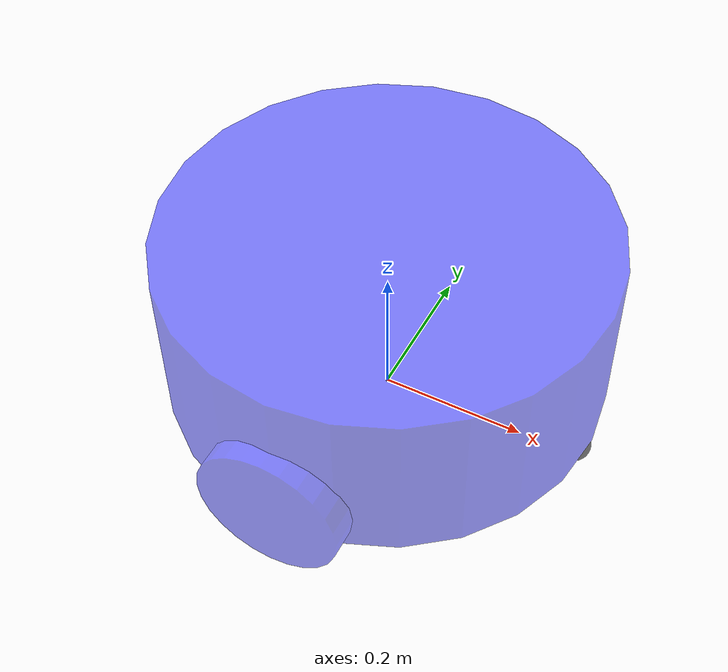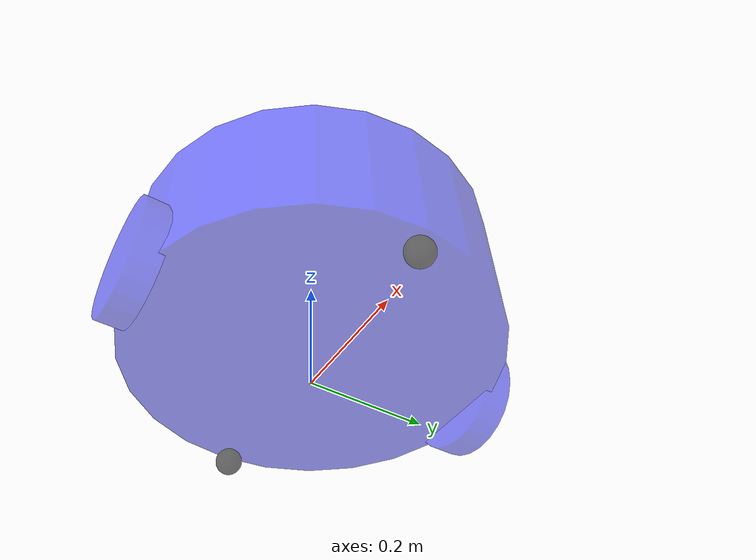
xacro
<robot name="mycar" xmlns:xacro="http://wiki.ros.org/xacro">
    <xacro:property name="footprint_radius" value="0.003"/>
    <xacro:property name="base_radius" value="0.3"/>
    <xacro:property name="base_length" value="0.24"/>
    <xacro:property name="lidi" value="0.045"/>
    <xacro:property name="base_joint_z" value="${base_length/2 + lidi}"/>

    <link name="base_footprint">
        <visual>
            <geometry>
                <sphere radius="${footprint_radius}" />
            </geometry>
        </visual>
    </link>

    <link name="base_link">
        <visual>
            <geometry>
                <cylinder radius="${base_radius}" length="${base_length}" />
            </geometry>
            <origin xyz="0 0 0" rpy="0 0 0" />
            <material name="blue">
                <color rgba="0 0 1.0 0.5" />
            </material>
        </visual>
        <collision>
            <geometry>
                <cylinder radius="${base_radius}" length="${base_length}" />
            </geometry>
            <origin xyz="0 0 0" rpy="0 0 0" />
        </collision>
        <xacro:cylinder_inertial_matrix m="18" r="${base_radius}" h="${base_length}" />
    </link>

    <gazebo reference="base_link">
        <material>Gazebo/Yellow</material>
    </gazebo>

    <joint name="base_link2base_footprint" type="fixed">
        <parent link="base_footprint" />
        <child link="base_link"/>
        <origin xyz="0 0 ${base_joint_z}" />
    </joint>

    <xacro:property name="wheel_radius" value="0.0975"/>
    <xacro:property name="wheel_length" value="0.045"/>
    <xacro:property name="PI" value="3.1415927"/>
    <xacro:property name="wheel_joint_Z" value="${-base_length/2 - lidi + wheel_radius}"/>

    <xacro:macro name="wheel_func" params="wheel_name flag">
        <link name="${wheel_name}_wheel">
            <visual>
                <geometry>
                    <cylinder radius="${wheel_radius}" length="${wheel_length}" />
                </geometry>
                <origin xyz="0 0 0" rpy="${PI/2} 0 0" />
                <material name="wheel_color">
                    <color rgba="0 0 1.0 0.5 0.3" />
                </material>
            </visual>
            <collision>
                <geometry>
                    <cylinder radius="${wheel_radius}" length="${wheel_length}" />
                </geometry>
                <origin xyz="0.0 0.0 0.0" rpy="${PI / 2} 0.0 0.0" />
            </collision>
            <xacro:cylinder_inertial_matrix m="9" r="${wheel_radius}" h="${wheel_length}" />
        </link>

        <joint name="base_link2_${wheel_name}" type="continuous">
            <parent link="base_link" />
            <child link="${wheel_name}_wheel"/>
            <origin xyz="0 ${0.3 * flag} ${wheel_joint_Z}" />
            <axis xyz="0 1 0" />
        </joint>

        <gazebo reference="${wheel_name}_wheel">
            <material>Gazebo/Red</material>
        </gazebo>
    </xacro:macro>

    <xacro:wheel_func wheel_name="left" flag="1" />
    <xacro:wheel_func wheel_name="right" flag="-1" />

    <xacro:property name="small_radius" value="0.0225"/>
    <xacro:property name="small_jointz" value="${-base_length/2 - lidi + small_radius}"/>

    <xacro:macro name="small_wheel_func" params="small_wheel_name flag">
        <link name="${small_wheel_name}_wheel">
            <visual>
                <geometry>
                    <sphere radius="${small_radius}" />
                </geometry>
                <origin xyz="0 0 0" rpy="0 0 0" />
                <material name="black">
                    <color rgba="0.0 0.0 0.0 0.6" />
                </material>
            </visual>
            <collision>
                <geometry>
                    <sphere radius="${small_radius}" />
                </geometry>
                <origin xyz="0 0 0" rpy="0 0 0" />
            </collision>
            <xacro:sphere_inertial_matrix m="0.72" r="${small_radius}" />
        </link>

        <joint name="${small_wheel_name}2base_link" type="continuous">
            <parent link="base_link" />
            <child link="${small_wheel_name}_wheel" />
            <origin xyz="${0.2775 * flag} 0 ${small_jointz}" />
            <axis xyz="1 1 1" />
        </joint>

        <gazebo reference="${small_wheel_name}_wheel">
            <material>Gazebo/Red</material>
        </gazebo>
    </xacro:macro>

    <xacro:small_wheel_func small_wheel_name="front" flag="1" />
    <xacro:small_wheel_func small_wheel_name="back" flag="-1" />
</robot>
